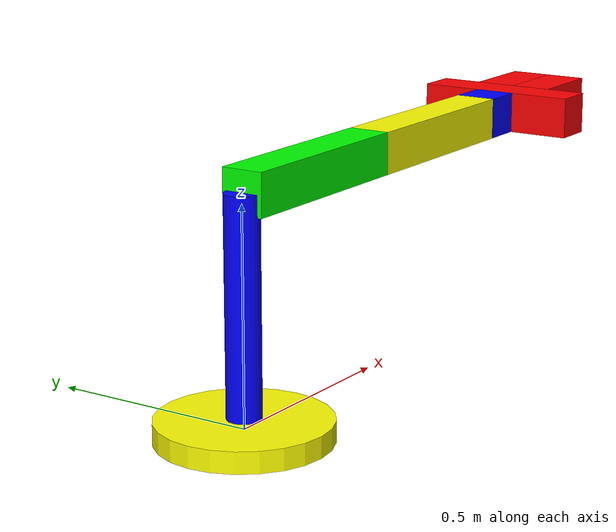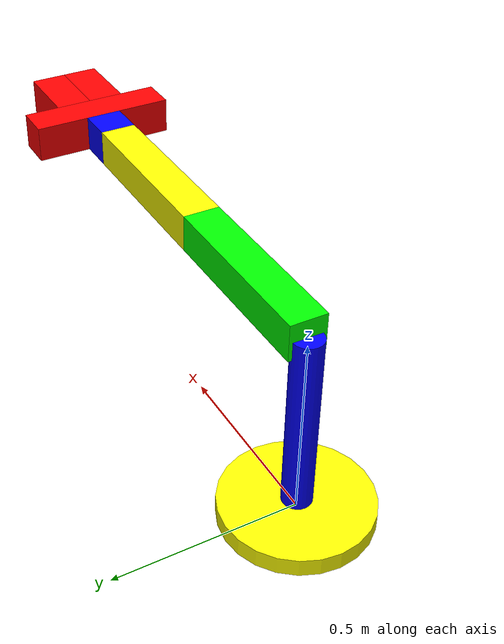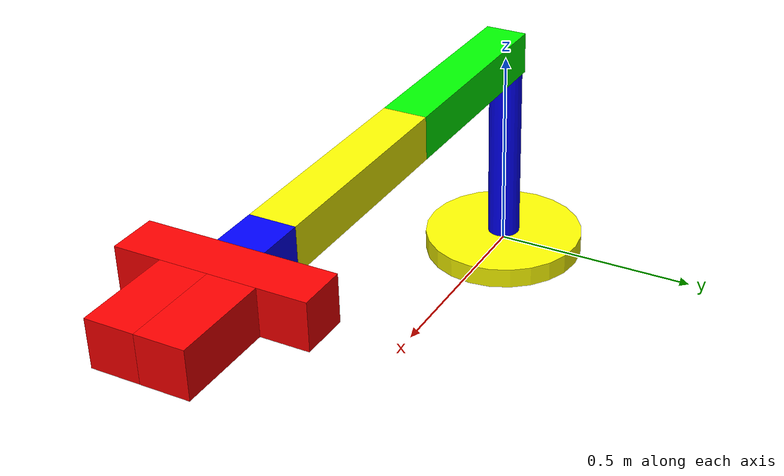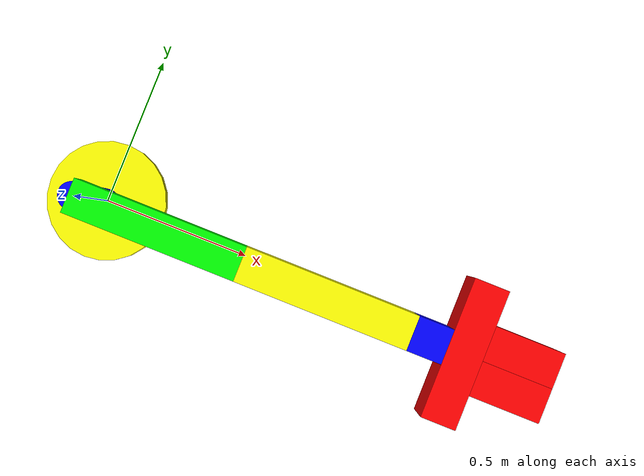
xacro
<?xml version="1.0"?>
<robot xmlns:xacro="http://www.ros.org/wiki/xacro" name="simple_robot">
    <xacro:arg name="initial_positions_file" default="initial_positions.yaml" />

    <!-- Import simple_robot urdf file -->
    <xacro:include filename="$(find rrrrr_finger)/urdf/robot.urdf" />

    <!-- Import control_xacro -->
    <xacro:include filename="simple_robot.ros2_control.xacro" />

    <xacro:simple_robot_ros2_control name="FakeSystem" initial_positions_file="$(arg initial_positions_file)"/>

</robot>

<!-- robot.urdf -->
<robot name="simple_robot">
<link name="world"/>
<joint name="fixed" type="fixed">
<parent link="world"/>
<child link="base_link"/>
</joint>
<link name="base_link">
<visual>
<geometry>
<cylinder length="0.05" radius="0.2"/>
</geometry>
<!--origin of the reference frame of the visual element with respect to the reference frame of the link -->
<!-- rpy - r is roll, p is pitch, y is yaw -->
<!-- xzy - x, y, z are offsets -->
<origin rpy = "0 0 0" xyz = "0 0 0" />
<material name = "yellow">
<color rgba = "1 1 0 1" />
</material>
</visual>
<collision>
<geometry>
<cylinder length="0.05" radius="0.2"/>
</geometry>
<!--origin of the reference frame of the visual element with respect to the reference frame of the link -->
<!-- rpy - r is roll, p is pitch, y is yaw -->
<!-- xzy - x, y, z are offsets -->
<origin rpy = "0 0 0" xyz = "0 0 0" />
</collision>
</link>
<joint name="joint_1" type="revolute">
<parent link="base_link"/>
<child link="first_link"/>
<origin xyz="0 0 0.025"/>
<axis xyz="0 0 1"/>
<limit effort="300" velocity="2.0" lower="-2.2" upper="2.2" />
</joint>
<link name="first_link">
<visual>
<geometry>
<cylinder length="0.5" radius="0.04"/>
</geometry>
<origin rpy="0 0 0" xyz="0 0 0.25"/>
<material name="blue">
<color rgba="0 0 1 1"/>
</material>
</visual>
<collision>
<geometry>
<cylinder length="0.5" radius="0.04"/>
</geometry>
<origin rpy="0 0 0" xyz="0 0 0.25"/>
</collision>
</link>
<joint name="joint_2" type="revolute">
<parent link="first_link"/>
<child link="second_link"/>
<origin xyz="0 0 0.5" rpy="1.57079633 0 0"/>
<axis xyz="0 0 1"/>
<limit effort="300" velocity="2.0" lower="-2.2" upper="2.2" />
</joint>
<link name="second_link">
<visual>
<geometry>
<box size="0.5 0.1 0.1"/>
</geometry>
<origin rpy="0 0 0" xyz="0.25 0 0"/>
<material name="green">
<color rgba="0 1 0 1"/>
</material>
</visual>
<collision>
<geometry>
<box size="0.5 0.1 0.1"/>
</geometry>
<origin rpy="0 0 0" xyz="0.25 0 0"/>
</collision>
</link>
<joint name="joint_3" type="revolute">
<parent link="second_link"/>
<child link="third_link"/>
<origin xyz="0.5 0 0"/>
<axis xyz="0 0 1"/>
<limit effort="300" velocity="2.0" lower="-2.2" upper="2.2" />
</joint>
<link name="third_link">
<visual>
<geometry>
<box size="0.5 0.1 0.1"/>
</geometry>
<origin rpy="0 0 0" xyz="0.25 0 0"/>
<material name="yellow">
<color rgba="1 1 0 1"/>
</material>
</visual>
<collision>
<geometry>
<box size="0.5 0.1 0.1"/>
</geometry>
<origin rpy="0 0 0" xyz="0.25 0 0"/>
</collision>
</link>
<joint name="joint_4" type="revolute">
<parent link="third_link"/>
<child link="fourth_link"/>
<origin xyz="0.5 0 0"/>
<axis xyz="0 0 1"/>
<limit effort="300" velocity="2.0" lower="-2.2" upper="2.2" />
</joint>
<link name="fourth_link">
<visual>
<geometry>
<box size="0.1 0.1 0.1"/>
</geometry>
<origin rpy="0 0 0" xyz="0.05 0 0"/>
<material name="blue">
<color rgba="0 0 1 1"/>
</material>
</visual>
<collision>
<geometry>
<box size="0.1 0.1 0.1"/>
</geometry>
<origin rpy="0 0 0" xyz="0.05 0 0"/>
</collision>
</link>
<joint name="joint_final" type="revolute">
<parent link="fourth_link"/>
<child link="hand"/>
<origin xyz="0.1 0 0" rpy="0 1.57079633 0"/>
<axis xyz="0 0 1"/>
<limit effort="300" velocity="2.0" lower="-2.2" upper="2.2" />
</joint>
<link name="hand">
<visual>
<geometry>
<box size="0.4 0.1 0.1"/>
</geometry>
<origin rpy="0 0 0" xyz="0 0 0.05"/>
<material name="red">
<color rgba="1 0 0 1"/>
</material>
</visual>
<collision>
<geometry>
<box size="0.4 0.1 0.1"/>
</geometry>
<origin rpy="0 0 0" xyz="0 0 0.05"/>
</collision>
</link>
<joint name="finger1_joint" type="prismatic">
<parent link="hand"/>
<child link="finger1"/>
<origin xyz="0 0 0.2" rpy="0 -1.57079633 0"/>
<axis xyz="0 0 1"/>
<limit effort="300" velocity="2.0" lower="0" upper="0.2" />
</joint>
<link name="finger1">
<visual>
<geometry>
<box size="0.2 0.1 0.1"/>
</geometry>
<origin rpy="0 0 0" xyz="0 0 0.05"/>
<material name="red">
<color rgba="1 0 0 1"/>
</material>
</visual>
<collision>
<geometry>
<box size="0.2 0.1 0.1"/>
</geometry>
<origin rpy="0 0 0" xyz="0 0 0.05"/>
</collision>
</link>
<joint name="finger2_joint" type="prismatic">
<parent link="hand"/>
<child link="finger2"/>
<origin xyz="0 0 0.2" rpy="0 -1.57079633 0"/>
<axis xyz="0 0 1"/>
<limit effort="300" velocity="2.0" lower="-0.2" upper="0" />
</joint>
<link name="finger2">
<visual>
<geometry>
<box size="0.2 0.1 0.1"/>
</geometry>
<origin rpy="0 0 0" xyz="0 0 -0.05"/>
<material name="red">
<color rgba="1 0 0 1"/>
</material>
</visual>
<collision>
<geometry>
<box size="0.2 0.1 0.1"/>
</geometry>
<origin rpy="0 0 0" xyz="0 0 -0.05"/>
</collision>
</link>
</robot>
